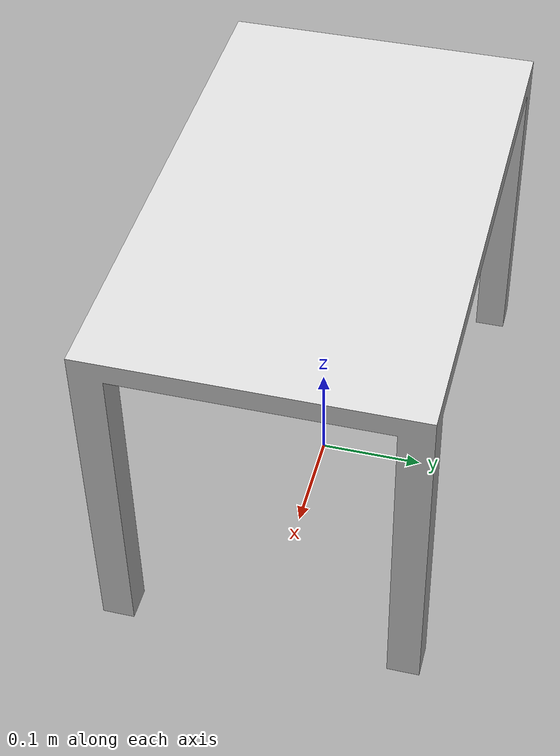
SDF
<?xml version="1.0" ?>
<sdf version="1.7">
  <model name="table">
    <static>true</static>

    <link name="link">
      <pose>0 0 0 0 0 0</pose>

      <visual name="visual">
        <geometry>
          <mesh>
            <uri>model://table/meshes/table.dae</uri>
            <scale>1 1 1</scale>
          </mesh>
        </geometry>
      </visual>

      <collision name="collision">
        <geometry>
          <mesh>
            <uri>model://table/meshes/table.dae</uri>
            <scale>1 1 1</scale>
          </mesh>
        </geometry>
      </collision>
    </link>
  </model>
</sdf>
